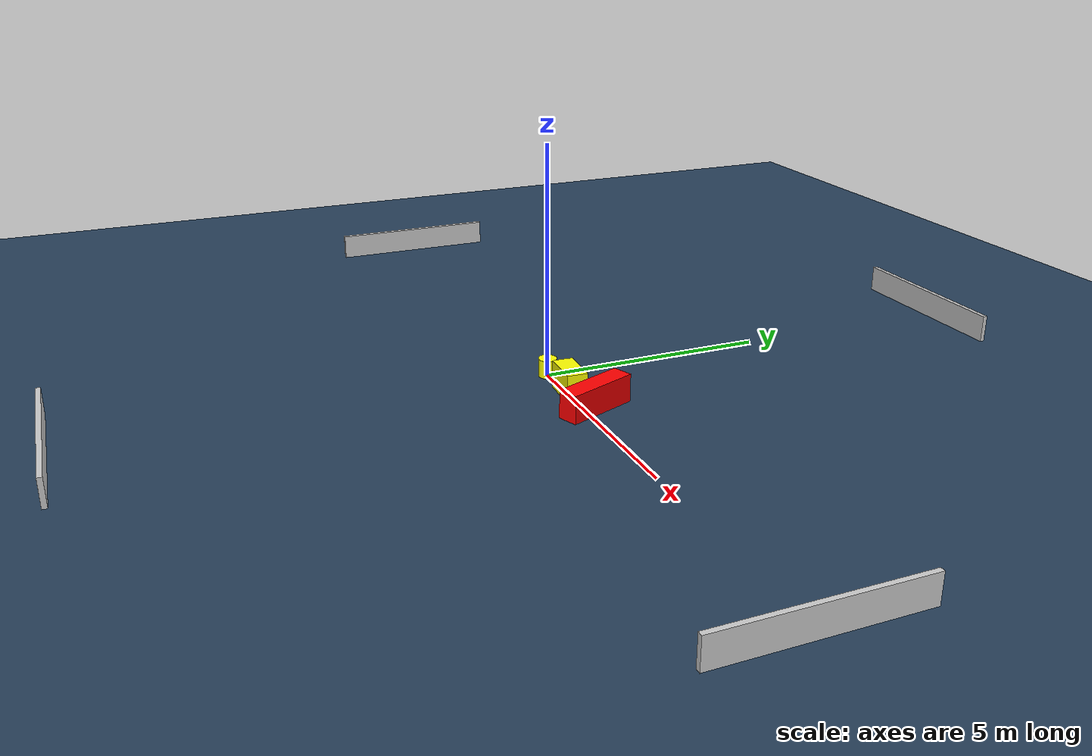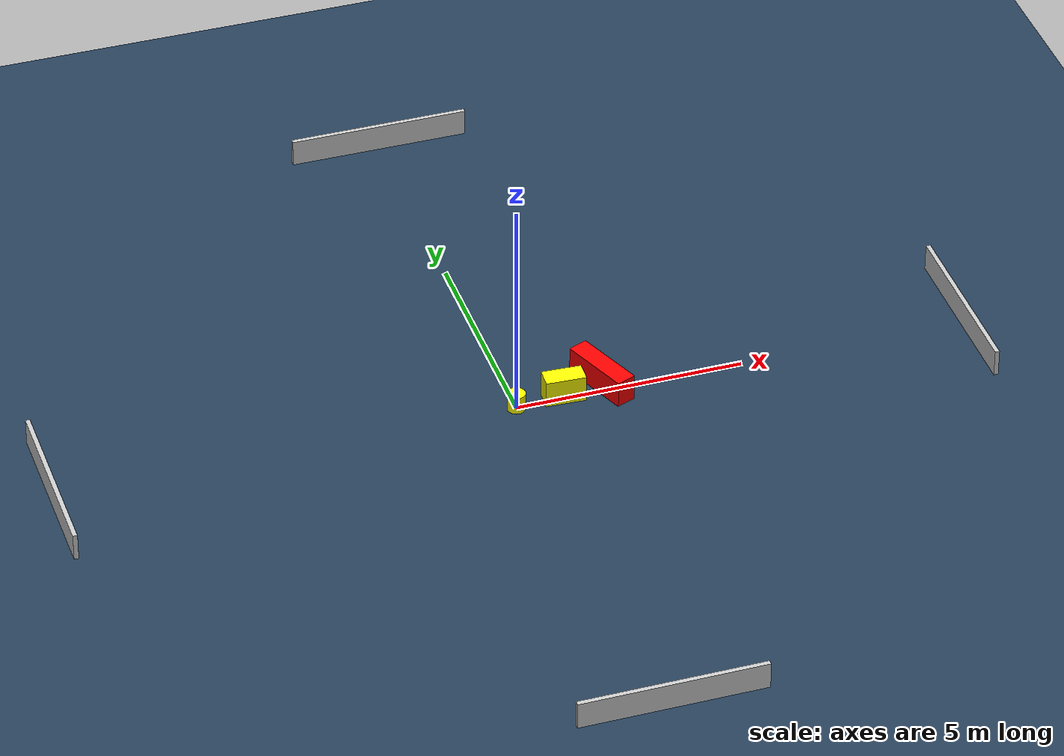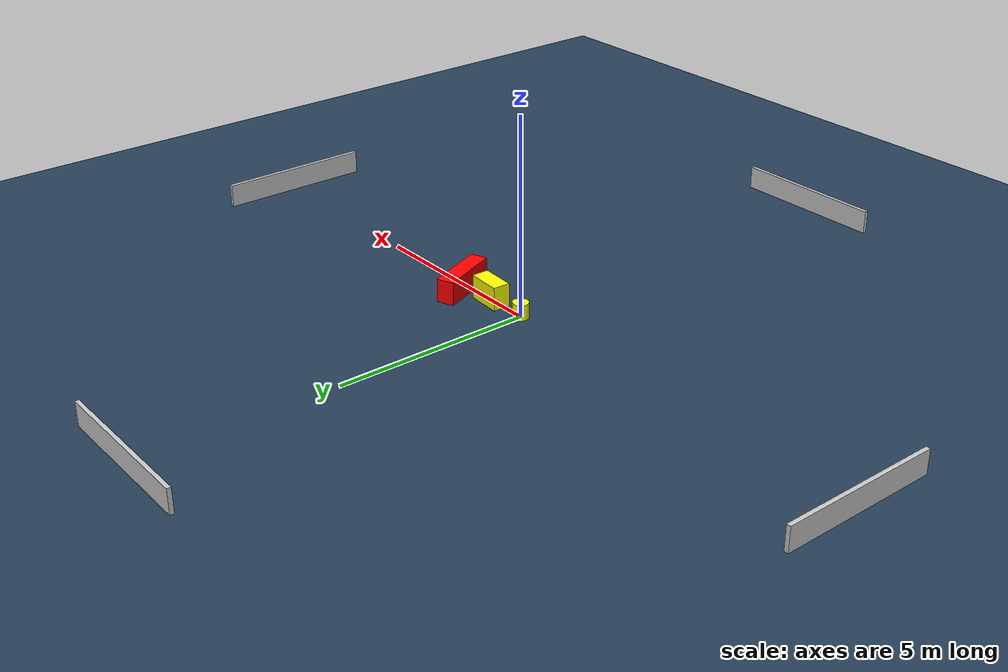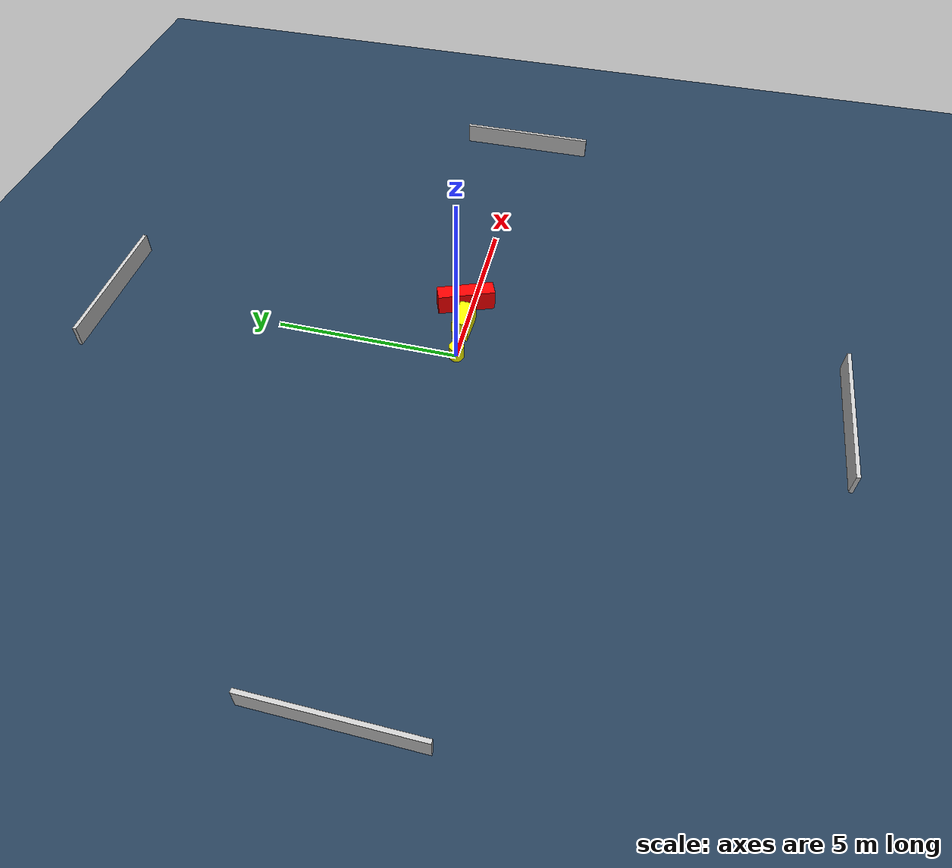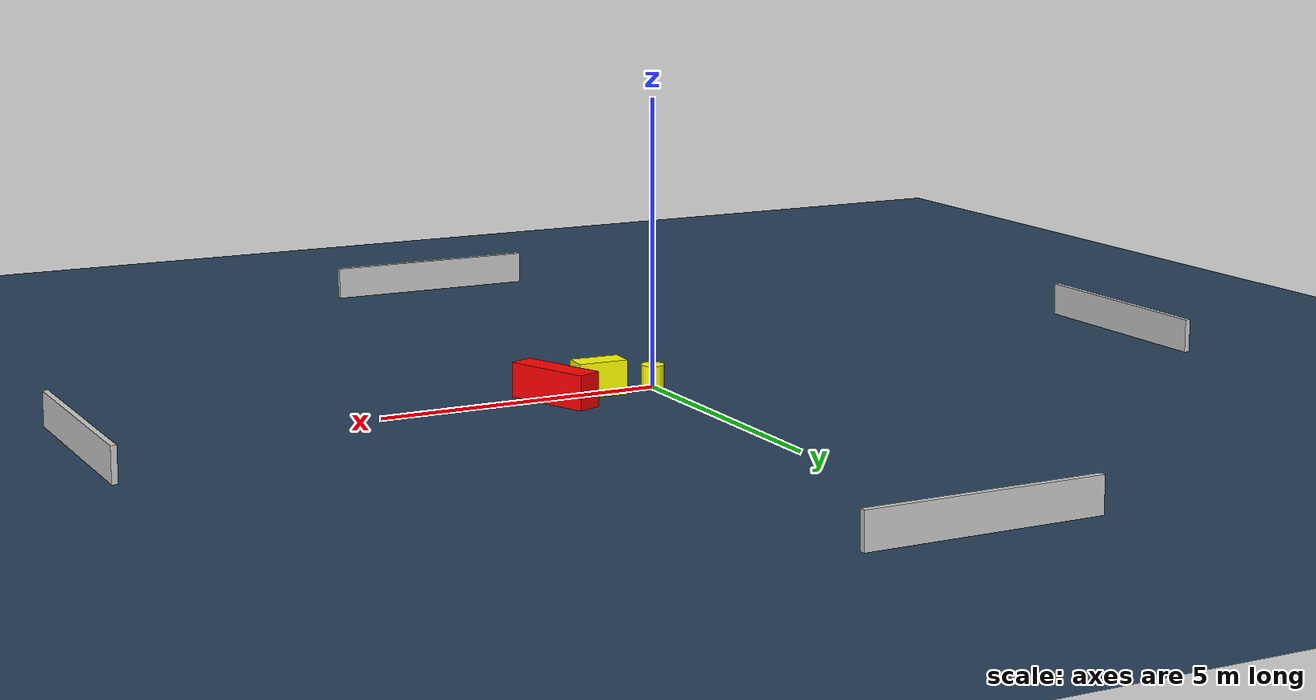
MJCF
<?xml version="1.0" ?>
<mujoco model="generated_environment">
  <option timestep="0.01" integrator="RK4" cone="elliptic"/>
  <default>
    <geom density="1"/>
  </default>
  <asset>
    <texture builtin="gradient" height="3072" name="skybox" rgb1="0.3 0.5 0.7" rgb2="0 0 0" type="skybox" width="512"/>
    <texture builtin="checker" height="300" name="groundplane" rgb1="0.2 0.3 0.4" rgb2="0.1 0.2 0.3" type="2d" width="300"/>
    <material name="groundplane" reflectance="0.2" texrepeat="5 5" texture="groundplane"/>
  </asset>
  <worldbody>
    <light dir="0 0 -1" directional="true" pos="0 0 1.5"/>
    <geom condim="3" friction="0.5 0.005 0.001" material="groundplane" name="floor" pos="0 0 0" size="0 0 0.05" type="plane"/>
    <body name="walls">
      <geom name="wall_1" condim="4" pos="-10.0 0.0 0.3" rgba="0.800000011920929 0.800000011920929 0.800000011920929 1.0" size="0.05 2.0 0.3" type="box"/>
      <geom name="wall_2" condim="4" pos="10.0 0.0 0.3" rgba="0.800000011920929 0.800000011920929 0.800000011920929 1.0" size="0.05 2.0 0.3" type="box"/>
      <geom name="wall_3" condim="4" pos="0.0 -10.0 0.3" rgba="0.800000011920929 0.800000011920929 0.800000011920929 1.0" size="2.0 0.05 0.3" type="box"/>
      <geom name="wall_4" condim="4" pos="0.0 10.0 0.3" rgba="0.800000011920929 0.800000011920929 0.800000011920929 1.0" size="2.0 0.05 0.3" type="box"/>
    </body>
    <body name="robot">
      <joint name="joint_x" type="slide" pos="0 0 0" axis="1 0 0"/>
      <joint name="joint_y" type="slide" pos="0 0 0" axis="0 1 0"/>
      <geom name="robot" type="cylinder" pos="0.0 0.0 0.2" size="0.2 0.2 0.0" mass="5.0" friction="1.0 0.005 0.0001" condim="4" rgba="1.0 1.0 0.0 1.0"/>
    </body>
    <body name="obstacle_1_movable">
      <geom name="obstacle_1_movable" condim="4" pos="1.0599099599887083 0.053144889886760444 0.3" euler="0 0 267.1129328588116" friction="0.0 0.005 0.001" rgba="1.0 1.0 0.0 1.0" size="0.21868147747791236 0.4377967096233102 0.3" type="box" mass="0.1"/>
      <joint type="free"/>
    </body>
    <body name="obstacle_2_static">
      <geom name="obstacle_2_static" condim="4" pos="1.9604130813169764 0.21640985508831004 0.3" euler="0 0 291.6700089725016" friction="0.0 0.005 0.001" rgba="1.0 0.0 0.0 1.0" size="0.7930428278987884 0.2209682524573599 0.3" type="box"/>
    </body>
  </worldbody>
  <actuator>
    <motor name="actuator_x" joint="joint_x" gear="1" ctrlrange="-1 1"/>
    <motor name="actuator_y" joint="joint_y" gear="1" ctrlrange="-1 1"/>
  </actuator>
</mujoco>
